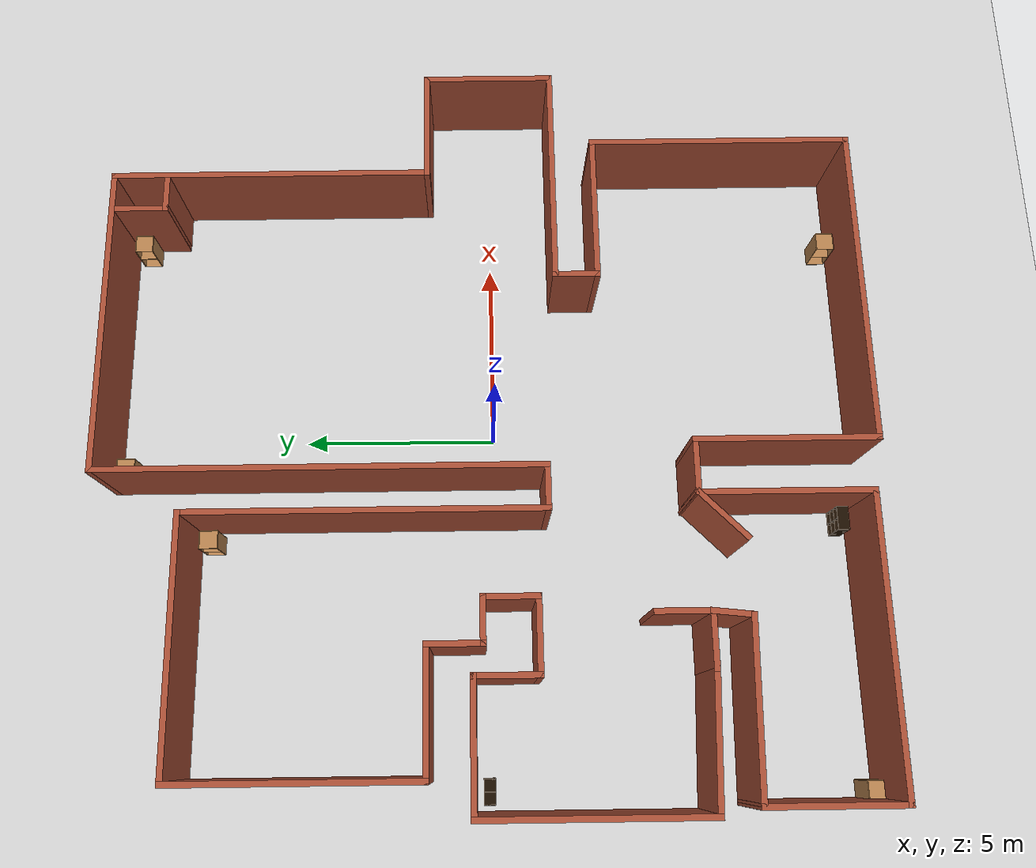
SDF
<sdf version="1.6">
 <world name="default">
  <light name="sun" type="directional">
   <pose>0 0 10 0 -0 0</pose>
   <diffuse>0.8 0.8 0.8 1</diffuse>
   <specular>0.2 0.2 0.2 1</specular>
   <attenuation>
    <range>1000</range>
    <constant>0.9</constant>
    <linear>0.01</linear>
    <quadratic>0.001</quadratic>
   </attenuation>
   <direction>-0.5 0.1 -0.9</direction>
  </light>
  <model name="ground_plane">
   <static>1</static>
   <link name="link">
    <collision name="collision">
     <geometry><plane><normal>0 0 1</normal><size>100 100</size></plane></geometry>
     <surface>
      <contact><collide_bitmask>65535</collide_bitmask></contact>
      <friction><ode><mu>100</mu><mu2>50</mu2></ode></friction>
     </surface>
    </collision>
    <visual name="visual">
     <cast_shadows>0</cast_shadows>
     <geometry><plane><normal>0 0 1</normal><size>100 100</size></plane></geometry>
     <material>
      <script><uri>file://media/materials/scripts/gazebo.material</uri><name>Gazebo/Grey</name></script>
     </material>
    </visual>
   </link>
  </model>
  <gravity>0 0 -9.8</gravity>
  <magnetic_field>6e-06 2.3e-05 -4.2e-05</magnetic_field>
  <atmosphere type="adiabatic"/>
  <physics name="default_physics" default="0" type="ode">
   <max_step_size>0.001</max_step_size>
   <real_time_factor>1</real_time_factor>
   <real_time_update_rate>1000</real_time_update_rate>
  </physics>
  <scene><ambient>0.4 0.4 0.4 1</ambient><background>0.7 0.7 0.7 1</background><shadows>1</shadows></scene>
  <audio><device>default</device></audio>
  <spherical_coordinates>
   <surface_model>EARTH_WGS84</surface_model>
   <latitude_deg>0</latitude_deg>
   <longitude_deg>0</longitude_deg>
   <elevation>0</elevation>
   <heading_deg>0</heading_deg>
  </spherical_coordinates>
  <model name="map_113">
   <pose>0.056753 0.212089 0 0 -0 0</pose>
   <link name="Wall_25">
    <collision name="Wall_25_Collision">
     <geometry><box><size>3.5 0.15 2.5</size></box></geometry>
     <pose>0 0 1.25 0 -0 0</pose>
    </collision>
    <visual name="Wall_25_Visual">
     <pose>0 0 1.25 0 -0 0</pose>
     <geometry><box><size>3.5 0.15 2.5</size></box></geometry>
     <material>
      <script><uri>file://media/materials/scripts/gazebo.material</uri><name>Gazebo/Bricks</name></script>
      <ambient>1 1 1 1</ambient>
     </material>
     <meta><layer>0</layer></meta>
    </visual>
    <pose>-9.41984 -7.9 0 0 -0 -1.5708</pose>
   </link>
   <link name="Wall_31">
    <collision name="Wall_31_Collision">
     <geometry><box><size>7.5 0.15 2.5</size></box></geometry>
     <pose>0 0 1.25 0 -0 0</pose>
    </collision>
    <visual name="Wall_31_Visual">
     <pose>0 0 1.25 0 -0 0</pose>
     <geometry><box><size>7.5 0.15 2.5</size></box></geometry>
     <material>
      <script><uri>file://media/materials/scripts/gazebo.material</uri><name>Gazebo/Bricks</name></script>
      <ambient>1 1 1 1</ambient>
     </material>
     <meta><layer>0</layer></meta>
    </visual>
    <pose>-5.74484 -9.575 0 0 -0 0</pose>
   </link>
   <link name="Wall_32">
    <collision name="Wall_32_Collision">
     <geometry><box><size>4.5 0.15 2.5</size></box></geometry>
     <pose>0 0 1.25 0 -0 0</pose>
    </collision>
    <visual name="Wall_32_Visual">
     <pose>0 0 1.25 0 -0 0</pose>
     <geometry><box><size>4.5 0.15 2.5</size></box></geometry>
     <material>
      <script><uri>file://media/materials/scripts/gazebo.material</uri><name>Gazebo/Bricks</name></script>
      <ambient>1 1 1 1</ambient>
     </material>
     <meta><layer>0</layer></meta>
    </visual>
    <pose>-2.06984 -7.4 0 0 -0 1.5708</pose>
   </link>
   <link name="Wall_33">
    <collision name="Wall_33_Collision">
     <geometry><box><size>1.5 0.15 2.5</size></box></geometry>
     <pose>0 0 1.25 0 -0 0</pose>
    </collision>
    <visual name="Wall_33_Visual">
     <pose>0 0 1.25 0 -0 0</pose>
     <geometry><box><size>1.5 0.15 2.5</size></box></geometry>
     <material>
      <script><uri>file://media/materials/scripts/gazebo.material</uri><name>Gazebo/Bricks</name></script>
      <ambient>1 1 1 1</ambient>
     </material>
     <meta><layer>0</layer></meta>
    </visual>
    <pose>-1.39484 -5.225 0 0 -0 0</pose>
   </link>
   <link name="Wall_34">
    <collision name="Wall_34_Collision">
     <geometry><box><size>4.75 0.15 2.5</size></box></geometry>
     <pose>0 0 1.25 0 -0 0</pose>
    </collision>
    <visual name="Wall_34_Visual">
     <pose>0 0 1.25 0 -0 0</pose>
     <geometry><box><size>4.75 0.15 2.5</size></box></geometry>
     <material>
      <script><uri>file://media/materials/scripts/gazebo.material</uri><name>Gazebo/Bricks</name></script>
      <ambient>1 1 1 1</ambient>
     </material>
     <meta><layer>0</layer></meta>
    </visual>
    <pose>-0.719837 -7.525 0 0 -0 -1.5708</pose>
   </link>
   <link name="Wall_35">
    <collision name="Wall_35_Collision">
     <geometry><box><size>8.5 0.15 2.5</size></box></geometry>
     <pose>0 0 1.25 0 -0 0</pose>
    </collision>
    <visual name="Wall_35_Visual">
     <pose>0 0 1.25 0 -0 0</pose>
     <geometry><box><size>8.5 0.15 2.5</size></box></geometry>
     <material>
      <script><uri>file://media/materials/scripts/gazebo.material</uri><name>Gazebo/Bricks</name></script>
      <ambient>1 1 1 1</ambient>
     </material>
     <meta><layer>0</layer></meta>
    </visual>
    <pose>3.45516 -9.825 0 0 -0 0</pose>
   </link>
   <link name="Wall_36">
    <collision name="Wall_36_Collision">
     <geometry><box><size>7 0.15 2.5</size></box></geometry>
     <pose>0 0 1.25 0 -0 0</pose>
    </collision>
    <visual name="Wall_36_Visual">
     <pose>0 0 1.25 0 -0 0</pose>
     <geometry><box><size>7 0.15 2.5</size></box></geometry>
     <material>
      <script><uri>file://media/materials/scripts/gazebo.material</uri><name>Gazebo/Bricks</name></script>
      <ambient>1 1 1 1</ambient>
     </material>
     <meta><layer>0</layer></meta>
    </visual>
    <pose>7.63016 -6.4 0 0 -0 1.5708</pose>
   </link>
   <link name="Wall_37">
    <collision name="Wall_37_Collision">
     <geometry><box><size>4 0.15 2.5</size></box></geometry>
     <pose>0 0 1.25 0 -0 0</pose>
    </collision>
    <visual name="Wall_37_Visual">
     <pose>0 0 1.25 0 -0 0</pose>
     <geometry><box><size>4 0.15 2.5</size></box></geometry>
     <material>
      <script><uri>file://media/materials/scripts/gazebo.material</uri><name>Gazebo/Bricks</name></script>
      <ambient>1 1 1 1</ambient>
     </material>
     <meta><layer>0</layer></meta>
    </visual>
    <pose>5.70516 -2.975 0 0 -0 3.14159</pose>
   </link>
   <link name="Wall_38">
    <collision name="Wall_38_Collision">
     <geometry><box><size>1.25 0.15 2.5</size></box></geometry>
     <pose>0 0 1.25 0 -0 0</pose>
    </collision>
    <visual name="Wall_38_Visual">
     <pose>0 0 1.25 0 -0 0</pose>
     <geometry><box><size>1.25 0.15 2.5</size></box></geometry>
     <material>
      <script><uri>file://media/materials/scripts/gazebo.material</uri><name>Gazebo/Bricks</name></script>
      <ambient>1 1 1 1</ambient>
     </material>
     <meta><layer>0</layer></meta>
    </visual>
    <pose>3.78016 -2.425 0 0 -0 1.5708</pose>
   </link>
   <link name="Wall_39">
    <collision name="Wall_39_Collision">
     <geometry><box><size>6 0.15 2.5</size></box></geometry>
     <pose>0 0 1.25 0 -0 0</pose>
    </collision>
    <visual name="Wall_39_Visual">
     <pose>0 0 1.25 0 -0 0</pose>
     <geometry><box><size>6 0.15 2.5</size></box></geometry>
     <material>
      <script><uri>file://media/materials/scripts/gazebo.material</uri><name>Gazebo/Bricks</name></script>
      <ambient>1 1 1 1</ambient>
     </material>
     <meta><layer>0</layer></meta>
    </visual>
    <pose>6.70516 -1.875 0 0 -0 0</pose>
   </link>
   <link name="Wall_42">
    <collision name="Wall_42_Collision">
     <geometry><box><size>3.5 0.15 2.5</size></box></geometry>
     <pose>0 0 1.25 0 -0 0</pose>
    </collision>
    <visual name="Wall_42_Visual">
     <pose>0 0 1.25 0 -0 0</pose>
     <geometry><box><size>3.5 0.15 2.5</size></box></geometry>
     <material>
      <script><uri>file://media/materials/scripts/gazebo.material</uri><name>Gazebo/Bricks</name></script>
      <ambient>1 1 1 1</ambient>
     </material>
     <meta><layer>0</layer></meta>
    </visual>
    <pose>9.63016 -0.2 0 0 -0 1.5708</pose>
   </link>
   <link name="Wall_43">
    <collision name="Wall_43_Collision">
     <geometry><box><size>3 0.15 2.5</size></box></geometry>
     <pose>0 0 1.25 0 -0 0</pose>
    </collision>
    <visual name="Wall_43_Visual">
     <pose>0 0 1.25 0 -0 0</pose>
     <geometry><box><size>3 0.15 2.5</size></box></geometry>
     <material>
      <script><uri>file://media/materials/scripts/gazebo.material</uri><name>Gazebo/Bricks</name></script>
      <ambient>1 1 1 1</ambient>
     </material>
     <meta><layer>0</layer></meta>
    </visual>
    <pose>8.20516 1.475 0 0 -0 3.14159</pose>
   </link>
   <link name="Wall_46">
    <collision name="Wall_46_Collision">
     <geometry><box><size>8.5 0.15 2.5</size></box></geometry>
     <pose>0 0 1.25 0 -0 0</pose>
    </collision>
    <visual name="Wall_46_Visual">
     <pose>0 0 1.25 0 -0 0</pose>
     <geometry><box><size>8.5 0.15 2.5</size></box></geometry>
     <material>
      <script><uri>file://media/materials/scripts/gazebo.material</uri><name>Gazebo/Bricks</name></script>
      <ambient>1 1 1 1</ambient>
     </material>
     <meta><layer>0</layer></meta>
    </visual>
    <pose>6.78016 5.65 0 0 -0 1.5708</pose>
   </link>
   <link name="Wall_47">
    <collision name="Wall_47_Collision">
     <geometry><box><size>8.25 0.15 2.5</size></box></geometry>
     <pose>0 0 1.25 0 -0 0</pose>
    </collision>
    <visual name="Wall_47_Visual">
     <pose>0 0 1.25 0 -0 0</pose>
     <geometry><box><size>8.25 0.15 2.5</size></box></geometry>
     <material>
      <script><uri>file://media/materials/scripts/gazebo.material</uri><name>Gazebo/Bricks</name></script>
      <ambient>1 1 1 1</ambient>
     </material>
     <meta><layer>0</layer></meta>
    </visual>
    <pose>2.73016 9.825 0 0 -0 3.14159</pose>
   </link>
   <link name="Wall_48">
    <collision name="Wall_48_Collision">
     <geometry><box><size>11.5 0.15 2.5</size></box></geometry>
     <pose>0 0 1.25 0 -0 0</pose>
    </collision>
    <visual name="Wall_48_Visual">
     <pose>0 0 1.25 0 -0 0</pose>
     <geometry><box><size>11.5 0.15 2.5</size></box></geometry>
     <material>
      <script><uri>file://media/materials/scripts/gazebo.material</uri><name>Gazebo/Bricks</name></script>
      <ambient>1 1 1 1</ambient>
     </material>
     <meta><layer>0</layer></meta>
    </visual>
    <pose>-1.31984 4.15 0 0 -0 -1.5708</pose>
   </link>
   <link name="Wall_49">
    <collision name="Wall_49_Collision">
     <geometry><box><size>1.25 0.15 2.5</size></box></geometry>
     <pose>0 0 1.25 0 -0 0</pose>
    </collision>
    <visual name="Wall_49_Visual">
     <pose>0 0 1.25 0 -0 0</pose>
     <geometry><box><size>1.25 0.15 2.5</size></box></geometry>
     <material>
      <script><uri>file://media/materials/scripts/gazebo.material</uri><name>Gazebo/Bricks</name></script>
      <ambient>1 1 1 1</ambient>
     </material>
     <meta><layer>0</layer></meta>
    </visual>
    <pose>-1.86984 -1.525 0 0 -0 3.14159</pose>
   </link>
   <link name="Wall_52">
    <collision name="Wall_52_Collision">
     <geometry><box><size>9.25 0.15 2.5</size></box></geometry>
     <pose>0 0 1.25 0 -0 0</pose>
    </collision>
    <visual name="Wall_52_Visual">
     <pose>0 0 1.25 0 -0 0</pose>
     <geometry><box><size>9.25 0.15 2.5</size></box></geometry>
     <material>
      <script><uri>file://media/materials/scripts/gazebo.material</uri><name>Gazebo/Bricks</name></script>
      <ambient>1 1 1 1</ambient>
     </material>
     <meta><layer>0</layer></meta>
    </visual>
    <pose>-2.41984 3.025 0 0 -0 1.5708</pose>
   </link>
   <link name="Wall_53">
    <collision name="Wall_53_Collision">
     <geometry><box><size>6.5 0.15 2.5</size></box></geometry>
     <pose>0 0 1.25 0 -0 0</pose>
    </collision>
    <visual name="Wall_53_Visual">
     <pose>0 0 1.25 0 -0 0</pose>
     <geometry><box><size>6.5 0.15 2.5</size></box></geometry>
     <material>
      <script><uri>file://media/materials/scripts/gazebo.material</uri><name>Gazebo/Bricks</name></script>
      <ambient>1 1 1 1</ambient>
     </material>
     <meta><layer>0</layer></meta>
    </visual>
    <pose>-5.59484 7.575 0 0 -0 3.14159</pose>
   </link>
   <link name="Wall_55">
    <collision name="Wall_55_Collision">
     <geometry><box><size>6.25 0.15 2.5</size></box></geometry>
     <pose>0 0 1.25 0 -0 0</pose>
    </collision>
    <visual name="Wall_55_Visual">
     <pose>0 0 1.25 0 -0 0</pose>
     <geometry><box><size>6.25 0.15 2.5</size></box></geometry>
     <material>
      <script><uri>file://media/materials/scripts/gazebo.material</uri><name>Gazebo/Bricks</name></script>
      <ambient>1 1 1 1</ambient>
     </material>
     <meta><layer>0</layer></meta>
    </visual>
    <pose>-8.76984 4.525 0 0 -0 -1.5708</pose>
   </link>
   <link name="Wall_56">
    <collision name="Wall_56_Collision">
     <geometry><box><size>3.25 0.15 2.5</size></box></geometry>
     <pose>0 0 1.25 0 -0 0</pose>
    </collision>
    <visual name="Wall_56_Visual">
     <pose>0 0 1.25 0 -0 0</pose>
     <geometry><box><size>3.25 0.15 2.5</size></box></geometry>
     <material>
      <script><uri>file://media/materials/scripts/gazebo.material</uri><name>Gazebo/Bricks</name></script>
      <ambient>1 1 1 1</ambient>
     </material>
     <meta><layer>0</layer></meta>
    </visual>
    <pose>-7.21984 1.475 0 0 -0 0</pose>
   </link>
   <link name="Wall_59">
    <collision name="Wall_59_Collision">
     <geometry><box><size>1.5 0.15 2.5</size></box></geometry>
     <pose>0 0 1.25 0 -0 0</pose>
    </collision>
    <visual name="Wall_59_Visual">
     <pose>0 0 1.25 0 -0 0</pose>
     <geometry><box><size>1.5 0.15 2.5</size></box></geometry>
     <material>
      <script><uri>file://media/materials/scripts/gazebo.material</uri><name>Gazebo/Bricks</name></script>
      <ambient>1 1 1 1</ambient>
     </material>
     <meta><layer>0</layer></meta>
    </visual>
    <pose>-5.66984 0.8 0 0 -0 -1.5708</pose>
   </link>
   <link name="Wall_60">
    <collision name="Wall_60_Collision">
     <geometry><box><size>1.25 0.15 2.5</size></box></geometry>
     <pose>0 0 1.25 0 -0 0</pose>
    </collision>
    <visual name="Wall_60_Visual">
     <pose>0 0 1.25 0 -0 0</pose>
     <geometry><box><size>1.25 0.15 2.5</size></box></geometry>
     <material>
      <script><uri>file://media/materials/scripts/gazebo.material</uri><name>Gazebo/Bricks</name></script>
      <ambient>1 1 1 1</ambient>
     </material>
     <meta><layer>0</layer></meta>
    </visual>
    <pose>-5.11984 0.125 0 0 -0 0</pose>
   </link>
   <link name="Wall_61">
    <collision name="Wall_61_Collision">
     <geometry><box><size>1.5 0.15 2.5</size></box></geometry>
     <pose>0 0 1.25 0 -0 0</pose>
    </collision>
    <visual name="Wall_61_Visual">
     <pose>0 0 1.25 0 -0 0</pose>
     <geometry><box><size>1.5 0.15 2.5</size></box></geometry>
     <material>
      <script><uri>file://media/materials/scripts/gazebo.material</uri><name>Gazebo/Bricks</name></script>
      <ambient>1 1 1 1</ambient>
     </material>
     <meta><layer>0</layer></meta>
    </visual>
    <pose>-4.56984 -0.55 0 0 -0 -1.5708</pose>
   </link>
   <link name="Wall_64">
    <collision name="Wall_64_Collision">
     <geometry><box><size>2 0.15 2.5</size></box></geometry>
     <pose>0 0 1.25 0 -0 0</pose>
    </collision>
    <visual name="Wall_64_Visual">
     <pose>0 0 1.25 0 -0 0</pose>
     <geometry><box><size>2 0.15 2.5</size></box></geometry>
     <material>
      <script><uri>file://media/materials/scripts/gazebo.material</uri><name>Gazebo/Bricks</name></script>
      <ambient>1 1 1 1</ambient>
     </material>
     <meta><layer>0</layer></meta>
    </visual>
    <pose>-5.49484 -1.225 0 0 -0 3.14159</pose>
   </link>
   <link name="Wall_65">
    <collision name="Wall_65_Collision">
     <geometry><box><size>1.75 0.15 2.5</size></box></geometry>
     <pose>0 0 1.25 0 -0 0</pose>
    </collision>
    <visual name="Wall_65_Visual">
     <pose>0 0 1.25 0 -0 0</pose>
     <geometry><box><size>1.75 0.15 2.5</size></box></geometry>
     <material>
      <script><uri>file://media/materials/scripts/gazebo.material</uri><name>Gazebo/Bricks</name></script>
      <ambient>1 1 1 1</ambient>
     </material>
     <meta><layer>0</layer></meta>
    </visual>
    <pose>-6.41984 -0.425 0 0 -0 1.5708</pose>
   </link>
   <link name="Wall_66">
    <collision name="Wall_66_Collision">
     <geometry><box><size>3.35701 0.15 2.5</size></box></geometry>
     <pose>0 0 1.25 0 -0 0</pose>
    </collision>
    <visual name="Wall_66_Visual">
     <pose>0 0 1.25 0 -0 0</pose>
     <geometry><box><size>3.35701 0.15 2.5</size></box></geometry>
     <material>
      <script><uri>file://media/materials/scripts/gazebo.material</uri><name>Gazebo/Bricks</name></script>
      <ambient>1 1 1 1</ambient>
     </material>
     <meta><layer>0</layer></meta>
    </visual>
    <pose>-8.02334 0.375 0 0 -0 3.14159</pose>
   </link>
   <link name="Wall_69">
    <collision name="Wall_69_Collision">
     <geometry><box><size>5.75 0.15 2.5</size></box></geometry>
     <pose>0 0 1.25 0 -0 0</pose>
    </collision>
    <visual name="Wall_69_Visual">
     <pose>0 0 1.25 0 -0 0</pose>
     <geometry><box><size>5.75 0.15 2.5</size></box></geometry>
     <material>
      <script><uri>file://media/materials/scripts/gazebo.material</uri><name>Gazebo/Bricks</name></script>
      <ambient>1 1 1 1</ambient>
     </material>
     <meta><layer>0</layer></meta>
    </visual>
    <pose>-9.62684 -2.425 0 0 -0 -1.5708</pose>
   </link>
   <link name="Wall_70">
    <collision name="Wall_70_Collision">
     <geometry><box><size>3.46041 0.15 2.5</size></box></geometry>
     <pose>0 0 1.25 0 -0 0</pose>
    </collision>
    <visual name="Wall_70_Visual">
     <pose>0 0 1.25 0 -0 0</pose>
     <geometry><box><size>3.46041 0.15 2.5</size></box></geometry>
     <material>
      <script><uri>file://media/materials/scripts/gazebo.material</uri><name>Gazebo/Bricks</name></script>
      <ambient>1 1 1 1</ambient>
     </material>
     <meta><layer>0</layer></meta>
    </visual>
    <pose>-7.97334 -5.3 0 0 -0 -0.045327</pose>
   </link>
   <link name="Wall_72">
    <collision name="Wall_72_Collision">
     <geometry><box><size>1.5 0.15 2.5</size></box></geometry>
     <pose>0 0 1.25 0 -0 0</pose>
    </collision>
    <visual name="Wall_72_Visual">
     <pose>0 0 1.25 0 -0 0</pose>
     <geometry><box><size>1.5 0.15 2.5</size></box></geometry>
     <material>
      <script><uri>file://media/materials/scripts/gazebo.material</uri><name>Gazebo/Bricks</name></script>
      <ambient>1 1 1 1</ambient>
     </material>
     <meta><layer>0</layer></meta>
    </visual>
    <pose>-5.64484 -5.375 0 0 -0 0</pose>
   </link>
   <link name="Wall_73">
    <collision name="Wall_73_Collision">
     <geometry><box><size>1.5 0.15 2.5</size></box></geometry>
     <pose>0 0 1.25 0 -0 0</pose>
    </collision>
    <visual name="Wall_73_Visual">
     <pose>0 0 1.25 0 -0 0</pose>
     <geometry><box><size>1.5 0.15 2.5</size></box></geometry>
     <material>
      <script><uri>file://media/materials/scripts/gazebo.material</uri><name>Gazebo/Bricks</name></script>
      <ambient>1 1 1 1</ambient>
     </material>
     <meta><layer>0</layer></meta>
    </visual>
    <pose>-4.96984 -4.7 0 0 -0 1.5708</pose>
   </link>
   <link name="Wall_76">
    <collision name="Wall_76_Collision">
     <geometry><box><size>1.75 0.15 2.5</size></box></geometry>
     <pose>0 0 1.25 0 -0 0</pose>
    </collision>
    <visual name="Wall_76_Visual">
     <pose>0 0 1.25 0 -0 0</pose>
     <geometry><box><size>1.75 0.15 2.5</size></box></geometry>
     <material>
      <script><uri>file://media/materials/scripts/gazebo.material</uri><name>Gazebo/Bricks</name></script>
      <ambient>1 1 1 1</ambient>
     </material>
     <meta><layer>0</layer></meta>
    </visual>
    <pose>-2.63552 -5.79068 0 0 -0 -2.35619</pose>
   </link>
   <link name="Wall_79">
    <collision name="Wall_79_Collision">
     <geometry><box><size>1.12708 0.15 2.5</size></box></geometry>
     <pose>0 0 1.25 0 -0 0</pose>
    </collision>
    <visual name="Wall_79_Visual">
     <pose>0 0 1.25 0 -0 0</pose>
     <geometry><box><size>1.12708 0.15 2.5</size></box></geometry>
     <material>
      <script><uri>file://media/materials/scripts/gazebo.material</uri><name>Gazebo/Bricks</name></script>
      <ambient>1 1 1 1</ambient>
     </material>
     <meta><layer>0</layer></meta>
    </visual>
    <pose>-5.02189 -5.86076 0 0 -0 1.46404</pose>
   </link>
   <link name="Wall_81">
    <collision name="Wall_81_Collision">
     <geometry><box><size>4.49759 0.15 2.5</size></box></geometry>
     <pose>0 0 1.25 0 -0 0</pose>
    </collision>
    <visual name="Wall_81_Visual">
     <pose>0 0 1.25 0 -0 0</pose>
     <geometry><box><size>4.49759 0.15 2.5</size></box></geometry>
     <material>
      <script><uri>file://media/materials/scripts/gazebo.material</uri><name>Gazebo/Bricks</name></script>
      <ambient>1 1 1 1</ambient>
     </material>
     <meta><layer>0</layer></meta>
    </visual>
    <pose>-7.24689 -6.28576 0 0 -0 3.11364</pose>
   </link>
   <link name="Wall_83">
    <collision name="Wall_83_Collision">
     <geometry><box><size>1.5 0.15 2.5</size></box></geometry>
     <pose>0 0 1.25 0 -0 0</pose>
    </collision>
    <visual name="Wall_83_Visual">
     <pose>0 0 1.25 0 -0 0</pose>
     <geometry><box><size>1.5 0.15 2.5</size></box></geometry>
     <material>
      <script><uri>file://media/materials/scripts/gazebo.material</uri><name>Gazebo/Bricks</name></script>
      <ambient>1 1 1 1</ambient>
     </material>
     <meta><layer>0</layer></meta>
    </visual>
    <pose>5.80675 9.08274 0 0 -0 -1.5708</pose>
   </link>
   <link name="Wall_84">
    <collision name="Wall_84_Collision">
     <geometry><box><size>1 0.15 2.5</size></box></geometry>
     <pose>0 0 1.25 0 -0 0</pose>
    </collision>
    <visual name="Wall_84_Visual">
     <pose>0 0 1.25 0 -0 0</pose>
     <geometry><box><size>1 0.15 2.5</size></box></geometry>
     <material>
      <script><uri>file://media/materials/scripts/gazebo.material</uri><name>Gazebo/Bricks</name></script>
      <ambient>1 1 1 1</ambient>
     </material>
     <meta><layer>0</layer></meta>
    </visual>
    <pose>6.23175 8.40774 0 0 -0 0</pose>
   </link>
   <static>1</static>
  </model>
  <model name="6_Cube_StorageE">
   <link name="Wall_0">
    <pose>0 0 0.01 0 -0 0</pose>
    <inertial>
     <mass>1.6201</mass>
     <inertia><ixx>0.0119</ixx><iyy>0.0631</iyy><izz>0.0513</izz><ixy>0</ixy><ixz>0</ixz><iyz>0</iyz></inertia>
    </inertial>
    <collision name="Wall_0_Collision"><geometry><box><size>0.616 0.296 0.02</size></box></geometry></collision>
    <visual name="Wall_0_Visual">
     <geometry><box><size>0.616 0.296 0.02</size></box></geometry>
     <material>
      <script><uri>file://media/materials/scripts/gazebo.material</uri><name>Gazebo/Grey</name></script>
      <ambient>0.105882 0.0509804 0 1</ambient>
     </material>
    </visual>
   </link>
   <joint name="0_2" type="fixed">
    <pose>-0.308 0 0 0 -0 0</pose>
    <parent>Wall_2</parent>
    <child>Wall_0</child>
    <axis>
     <xyz>1 0 0</xyz>
     <use_parent_model_frame>0</use_parent_model_frame>
     <limit><lower>-1e+16</lower><upper>1e+16</upper></limit>
    </axis>
   </joint>
   <joint name="0_12" type="fixed">
    <parent>Wall_12</parent>
    <child>Wall_0</child>
    <axis>
     <xyz>0 0 1</xyz>
     <use_parent_model_frame>0</use_parent_model_frame>
     <limit><lower>-1e+16</lower><upper>1e+16</upper></limit>
    </axis>
   </joint>
   <joint name="0_4" type="fixed">
    <pose>0.308 0 0 0 -0 0</pose>
    <parent>Wall_4</parent>
    <child>Wall_0</child>
    <axis>
     <xyz>1 0 0</xyz>
     <use_parent_model_frame>0</use_parent_model_frame>
     <limit><lower>-1e+16</lower><upper>1e+16</upper></limit>
    </axis>
   </joint>
   <link name="Wall_10">
    <pose>0 0 0.61 0 -0 0</pose>
    <inertial>
     <mass>1.6201</mass>
     <inertia><ixx>0.0119</ixx><iyy>0.0631</iyy><izz>0.0513</izz><ixy>0</ixy><ixz>0</ixz><iyz>0</iyz></inertia>
    </inertial>
    <collision name="Wall_10_Collision"><geometry><box><size>0.616 0.296 0.02</size></box></geometry></collision>
    <visual name="Wall_10_Visual">
     <geometry><box><size>0.616 0.296 0.02</size></box></geometry>
     <material>
      <script><uri>file://media/materials/scripts/gazebo.material</uri><name>Gazebo/Grey</name></script>
      <ambient>0.105882 0.0509804 0 1</ambient>
     </material>
    </visual>
   </link>
   <joint name="10_2" type="fixed">
    <pose>-0.308 0 0 0 -0 0</pose>
    <parent>Wall_2</parent>
    <child>Wall_10</child>
    <axis>
     <xyz>1 0 0</xyz>
     <use_parent_model_frame>0</use_parent_model_frame>
     <limit><lower>-1e+16</lower><upper>1e+16</upper></limit>
    </axis>
   </joint>
   <joint name="10_12" type="fixed">
    <parent>Wall_12</parent>
    <child>Wall_10</child>
    <axis>
     <xyz>0 0 1</xyz>
     <use_parent_model_frame>0</use_parent_model_frame>
     <limit><lower>-1e+16</lower><upper>1e+16</upper></limit>
    </axis>
   </joint>
   <joint name="10_4" type="fixed">
    <pose>0.308 0 0 0 -0 0</pose>
    <parent>Wall_4</parent>
    <child>Wall_10</child>
    <axis>
     <xyz>1 0 0</xyz>
     <use_parent_model_frame>0</use_parent_model_frame>
     <limit><lower>-1e+16</lower><upper>1e+16</upper></limit>
    </axis>
   </joint>
   <link name="Wall_12">
    <pose>0 0 0.4575 0 -0 0</pose>
    <inertial>
     <mass>2.4065</mass>
     <inertia><ixx>0.0177</ixx><iyy>0.1855</iyy><izz>0.168</izz><ixy>0</ixy><ixz>0</ixz><iyz>0</iyz></inertia>
    </inertial>
    <collision name="Wall_12_Collision"><geometry><box><size>0.02 0.296 0.915</size></box></geometry></collision>
    <visual name="Wall_12_Visual">
     <geometry><box><size>0.02 0.296 0.915</size></box></geometry>
     <material>
      <script><uri>file://media/materials/scripts/gazebo.material</uri><name>Gazebo/Grey</name></script>
      <ambient>0.105882 0.0509804 0 1</ambient>
     </material>
    </visual>
   </link>
   <link name="Wall_2">
    <pose>-0.298 0 0.4575 0 -0 0</pose>
    <inertial>
     <mass>2.4065</mass>
     <inertia><ixx>0.0177</ixx><iyy>0.1855</iyy><izz>0.168</izz><ixy>0</ixy><ixz>0</ixz><iyz>0</iyz></inertia>
    </inertial>
    <collision name="Wall_2_Collision"><geometry><box><size>0.02 0.296 0.915</size></box></geometry></collision>
    <visual name="Wall_2_Visual">
     <geometry><box><size>0.02 0.296 0.915</size></box></geometry>
     <material>
      <script><uri>file://media/materials/scripts/gazebo.material</uri><name>Gazebo/Grey</name></script>
      <ambient>0.105882 0.0509804 0 1</ambient>
     </material>
    </visual>
   </link>
   <link name="Wall_4">
    <pose>0.298 0 0.4575 0 -0 0</pose>
    <inertial>
     <mass>2.4065</mass>
     <inertia><ixx>0.0177</ixx><iyy>0.1855</iyy><izz>0.168</izz><ixy>0</ixy><ixz>0</ixz><iyz>0</iyz></inertia>
    </inertial>
    <collision name="Wall_4_Collision"><geometry><box><size>0.02 0.296 0.915</size></box></geometry></collision>
    <visual name="Wall_4_Visual">
     <geometry><box><size>0.02 0.296 0.915</size></box></geometry>
     <material>
      <script><uri>file://media/materials/scripts/gazebo.material</uri><name>Gazebo/Grey</name></script>
      <ambient>0.105882 0.0509804 0 1</ambient>
     </material>
    </visual>
   </link>
   <link name="Wall_6">
    <pose>0 0 0.905 0 -0 0</pose>
    <inertial>
     <mass>1.6201</mass>
     <inertia><ixx>0.0119</ixx><iyy>0.0631</iyy><izz>0.0513</izz><ixy>0</ixy><ixz>0</ixz><iyz>0</iyz></inertia>
    </inertial>
    <collision name="Wall_6_Collision"><geometry><box><size>0.616 0.296 0.02</size></box></geometry></collision>
    <visual name="Wall_6_Visual">
     <geometry><box><size>0.616 0.296 0.02</size></box></geometry>
     <material>
      <script><uri>file://media/materials/scripts/gazebo.material</uri><name>Gazebo/Grey</name></script>
      <ambient>0.105882 0.0509804 0 1</ambient>
     </material>
    </visual>
   </link>
   <joint name="6_2" type="fixed">
    <pose>-0.308 0 0 0 -0 0</pose>
    <parent>Wall_2</parent>
    <child>Wall_6</child>
    <axis>
     <xyz>2 0 0</xyz>
     <use_parent_model_frame>0</use_parent_model_frame>
     <limit><lower>-1e+16</lower><upper>1e+16</upper></limit>
    </axis>
   </joint>
   <joint name="6_12" type="fixed">
    <parent>Wall_12</parent>
    <child>Wall_6</child>
    <axis>
     <xyz>0 0 1</xyz>
     <use_parent_model_frame>0</use_parent_model_frame>
     <limit><lower>-1e+16</lower><upper>1e+16</upper></limit>
    </axis>
   </joint>
   <joint name="6_4" type="fixed">
    <pose>0.308 0 0 0 -0 0</pose>
    <parent>Wall_4</parent>
    <child>Wall_6</child>
    <axis>
     <xyz>1 0 0</xyz>
     <use_parent_model_frame>0</use_parent_model_frame>
     <limit><lower>-1e+16</lower><upper>1e+16</upper></limit>
    </axis>
   </joint>
   <link name="Wall_8">
    <pose>0 0 0.305 0 -0 0</pose>
    <inertial>
     <mass>1.6201</mass>
     <inertia><ixx>0.0119</ixx><iyy>0.0631</iyy><izz>0.0513</izz><ixy>0</ixy><ixz>0</ixz><iyz>0</iyz></inertia>
    </inertial>
    <collision name="Wall_8_Collision"><geometry><box><size>0.616 0.296 0.02</size></box></geometry></collision>
    <visual name="Wall_8_Visual">
     <geometry><box><size>0.616 0.296 0.02</size></box></geometry>
     <material>
      <script><uri>file://media/materials/scripts/gazebo.material</uri><name>Gazebo/Grey</name></script>
      <ambient>0.105882 0.0509804 0 1</ambient>
     </material>
    </visual>
   </link>
   <joint name="8_2" type="fixed">
    <pose>-0.308 0 0 0 -0 0</pose>
    <parent>Wall_2</parent>
    <child>Wall_8</child>
    <axis>
     <xyz>1 0 0</xyz>
     <use_parent_model_frame>0</use_parent_model_frame>
     <limit><lower>-1e+16</lower><upper>1e+16</upper></limit>
    </axis>
   </joint>
   <joint name="8_12" type="fixed">
    <parent>Wall_12</parent>
    <child>Wall_8</child>
    <axis>
     <xyz>0 0 1</xyz>
     <use_parent_model_frame>0</use_parent_model_frame>
     <limit><lower>-1e+16</lower><upper>1e+16</upper></limit>
    </axis>
   </joint>
   <joint name="8_4" type="fixed">
    <pose>0.308 0 0 0 -0 0</pose>
    <parent>Wall_4</parent>
    <child>Wall_8</child>
    <axis>
     <xyz>1 0 0</xyz>
     <use_parent_model_frame>0</use_parent_model_frame>
     <limit><lower>-1e+16</lower><upper>1e+16</upper></limit>
    </axis>
   </joint>
   <static>1</static>
   <pose>-2.39866 -9.01086 0 0 -0 0</pose>
  </model>
  <model name="cabinet">
   <static>1</static>
   <link name="cabinet_bottom_plate">
    <inertial>
     <pose>0 0 -1 0 -0 0</pose>
     <inertia><ixx>2.05</ixx><ixy>0</ixy><ixz>0</ixz><iyy>2.05</iyy><iyz>0</iyz><izz>2.05</izz></inertia>
     <mass>25</mass>
    </inertial>
    <collision name="cabinet_bottom_plate_geom">
     <pose>0 0 0.01 0 -0 0</pose>
     <geometry><box><size>0.45 0.45 0.02</size></box></geometry>
    </collision>
    <visual name="cabinet_bottom_plate_geom_visual">
     <pose>0 0 0.01 0 -0 0</pose>
     <geometry><box><size>0.45 0.45 0.02</size></box></geometry>
     <material>
      <script><uri>file://media/materials/scripts/gazebo.material</uri><name>Gazebo/Wood</name></script>
     </material>
    </visual>
    <collision name="cabinet_bottom_plate_geom_cabinet_back_plate">
     <pose>0.235 0 0.51 0 -0 0</pose>
     <geometry><box><size>0.02 0.45 1.02</size></box></geometry>
    </collision>
    <visual name="cabinet_bottom_plate_geom_cabinet_back_plate_visual">
     <pose>0.235 0 0.51 0 -0 0</pose>
     <geometry><box><size>0.02 0.45 1.02</size></box></geometry>
     <material>
      <script><uri>file://media/materials/scripts/gazebo.material</uri><name>Gazebo/Wood</name></script>
     </material>
    </visual>
    <collision name="cabinet_bottom_plate_geom_cabinet_left_plate">
     <pose>0 0.235 0.51 0 -0 0</pose>
     <geometry><box><size>0.45 0.02 1.02</size></box></geometry>
    </collision>
    <visual name="cabinet_bottom_plate_geom_cabinet_left_plate_visual">
     <pose>0 0.235 0.51 0 -0 0</pose>
     <geometry><box><size>0.45 0.02 1.02</size></box></geometry>
     <material>
      <script><uri>file://media/materials/scripts/gazebo.material</uri><name>Gazebo/Wood</name></script>
     </material>
    </visual>
    <collision name="cabinet_bottom_plate_geom_cabinet_middle_plate">
     <pose>0 0 0.51 0 -0 0</pose>
     <geometry><box><size>0.45 0.45 0.02</size></box></geometry>
    </collision>
    <visual name="cabinet_bottom_plate_geom_cabinet_middle_plate_visual">
     <pose>0 0 0.51 0 -0 0</pose>
     <geometry><box><size>0.45 0.45 0.02</size></box></geometry>
     <material>
      <script><uri>file://media/materials/scripts/gazebo.material</uri><name>Gazebo/Wood</name></script>
     </material>
    </visual>
    <collision name="cabinet_bottom_plate_geom_cabinet_right_plate">
     <pose>0 -0.235 0.51 0 -0 0</pose>
     <geometry><box><size>0.45 0.02 1.02</size></box></geometry>
    </collision>
    <visual name="cabinet_bottom_plate_geom_cabinet_right_plate_visual">
     <pose>0 -0.235 0.51 0 -0 0</pose>
     <geometry><box><size>0.45 0.02 1.02</size></box></geometry>
     <material>
      <script><uri>file://media/materials/scripts/gazebo.material</uri><name>Gazebo/Wood</name></script>
     </material>
    </visual>
    <collision name="cabinet_bottom_plate_geom_cabinet_top_plate">
     <pose>0 0 1.01 0 -0 0</pose>
     <geometry><box><size>0.45 0.45 0.02</size></box></geometry>
    </collision>
    <visual name="cabinet_bottom_plate_geom_cabinet_top_plate_visual">
     <pose>0 0 1.01 0 -0 0</pose>
     <geometry><box><size>0.45 0.45 0.02</size></box></geometry>
     <material>
      <script><uri>file://media/materials/scripts/gazebo.material</uri><name>Gazebo/Wood</name></script>
     </material>
    </visual>
   </link>
   <pose>-9.09622 -9.13035 0 0 -0 0</pose>
  </model>
  <model name="6_Cube_StorageE_0">
   <link name="Wall_0">
    <pose>0 0 0.01 0 -0 0</pose>
    <inertial>
     <mass>1.6201</mass>
     <inertia><ixx>0.0119</ixx><iyy>0.0631</iyy><izz>0.0513</izz><ixy>0</ixy><ixz>0</ixz><iyz>0</iyz></inertia>
    </inertial>
    <collision name="Wall_0_Collision"><geometry><box><size>0.616 0.296 0.02</size></box></geometry></collision>
    <visual name="Wall_0_Visual">
     <geometry><box><size>0.616 0.296 0.02</size></box></geometry>
     <material>
      <script><uri>file://media/materials/scripts/gazebo.material</uri><name>Gazebo/Grey</name></script>
      <ambient>0.105882 0.0509804 0 1</ambient>
     </material>
    </visual>
   </link>
   <joint name="0_2" type="fixed">
    <pose>-0.308 0 0 0 -0 0</pose>
    <parent>Wall_2</parent>
    <child>Wall_0</child>
    <axis>
     <xyz>1 0 0</xyz>
     <use_parent_model_frame>0</use_parent_model_frame>
     <limit><lower>-1e+16</lower><upper>1e+16</upper></limit>
    </axis>
   </joint>
   <joint name="0_12" type="fixed">
    <parent>Wall_12</parent>
    <child>Wall_0</child>
    <axis>
     <xyz>0 0 1</xyz>
     <use_parent_model_frame>0</use_parent_model_frame>
     <limit><lower>-1e+16</lower><upper>1e+16</upper></limit>
    </axis>
   </joint>
   <joint name="0_4" type="fixed">
    <pose>0.308 0 0 0 -0 0</pose>
    <parent>Wall_4</parent>
    <child>Wall_0</child>
    <axis>
     <xyz>1 0 0</xyz>
     <use_parent_model_frame>0</use_parent_model_frame>
     <limit><lower>-1e+16</lower><upper>1e+16</upper></limit>
    </axis>
   </joint>
   <link name="Wall_10">
    <pose>0 0 0.61 0 -0 0</pose>
    <inertial>
     <mass>1.6201</mass>
     <inertia><ixx>0.0119</ixx><iyy>0.0631</iyy><izz>0.0513</izz><ixy>0</ixy><ixz>0</ixz><iyz>0</iyz></inertia>
    </inertial>
    <collision name="Wall_10_Collision"><geometry><box><size>0.616 0.296 0.02</size></box></geometry></collision>
    <visual name="Wall_10_Visual">
     <geometry><box><size>0.616 0.296 0.02</size></box></geometry>
     <material>
      <script><uri>file://media/materials/scripts/gazebo.material</uri><name>Gazebo/Grey</name></script>
      <ambient>0.105882 0.0509804 0 1</ambient>
     </material>
    </visual>
   </link>
   <joint name="10_2" type="fixed">
    <pose>-0.308 0 0 0 -0 0</pose>
    <parent>Wall_2</parent>
    <child>Wall_10</child>
    <axis>
     <xyz>1 0 0</xyz>
     <use_parent_model_frame>0</use_parent_model_frame>
     <limit><lower>-1e+16</lower><upper>1e+16</upper></limit>
    </axis>
   </joint>
   <joint name="10_12" type="fixed">
    <parent>Wall_12</parent>
    <child>Wall_10</child>
    <axis>
     <xyz>0 0 1</xyz>
     <use_parent_model_frame>0</use_parent_model_frame>
     <limit><lower>-1e+16</lower><upper>1e+16</upper></limit>
    </axis>
   </joint>
   <joint name="10_4" type="fixed">
    <pose>0.308 0 0 0 -0 0</pose>
    <parent>Wall_4</parent>
    <child>Wall_10</child>
    <axis>
     <xyz>1 0 0</xyz>
     <use_parent_model_frame>0</use_parent_model_frame>
     <limit><lower>-1e+16</lower><upper>1e+16</upper></limit>
    </axis>
   </joint>
   <link name="Wall_12">
    <pose>0 0 0.4575 0 -0 0</pose>
    <inertial>
     <mass>2.4065</mass>
     <inertia><ixx>0.0177</ixx><iyy>0.1855</iyy><izz>0.168</izz><ixy>0</ixy><ixz>0</ixz><iyz>0</iyz></inertia>
    </inertial>
    <collision name="Wall_12_Collision"><geometry><box><size>0.02 0.296 0.915</size></box></geometry></collision>
    <visual name="Wall_12_Visual">
     <geometry><box><size>0.02 0.296 0.915</size></box></geometry>
     <material>
      <script><uri>file://media/materials/scripts/gazebo.material</uri><name>Gazebo/Grey</name></script>
      <ambient>0.105882 0.0509804 0 1</ambient>
     </material>
    </visual>
   </link>
   <link name="Wall_2">
    <pose>-0.298 0 0.4575 0 -0 0</pose>
    <inertial>
     <mass>2.4065</mass>
     <inertia><ixx>0.0177</ixx><iyy>0.1855</iyy><izz>0.168</izz><ixy>0</ixy><ixz>0</ixz><iyz>0</iyz></inertia>
    </inertial>
    <collision name="Wall_2_Collision"><geometry><box><size>0.02 0.296 0.915</size></box></geometry></collision>
    <visual name="Wall_2_Visual">
     <geometry><box><size>0.02 0.296 0.915</size></box></geometry>
     <material>
      <script><uri>file://media/materials/scripts/gazebo.material</uri><name>Gazebo/Grey</name></script>
      <ambient>0.105882 0.0509804 0 1</ambient>
     </material>
    </visual>
   </link>
   <link name="Wall_4">
    <pose>0.298 0 0.4575 0 -0 0</pose>
    <inertial>
     <mass>2.4065</mass>
     <inertia><ixx>0.0177</ixx><iyy>0.1855</iyy><izz>0.168</izz><ixy>0</ixy><ixz>0</ixz><iyz>0</iyz></inertia>
    </inertial>
    <collision name="Wall_4_Collision"><geometry><box><size>0.02 0.296 0.915</size></box></geometry></collision>
    <visual name="Wall_4_Visual">
     <geometry><box><size>0.02 0.296 0.915</size></box></geometry>
     <material>
      <script><uri>file://media/materials/scripts/gazebo.material</uri><name>Gazebo/Grey</name></script>
      <ambient>0.105882 0.0509804 0 1</ambient>
     </material>
    </visual>
   </link>
   <link name="Wall_6">
    <pose>0 0 0.905 0 -0 0</pose>
    <inertial>
     <mass>1.6201</mass>
     <inertia><ixx>0.0119</ixx><iyy>0.0631</iyy><izz>0.0513</izz><ixy>0</ixy><ixz>0</ixz><iyz>0</iyz></inertia>
    </inertial>
    <collision name="Wall_6_Collision"><geometry><box><size>0.616 0.296 0.02</size></box></geometry></collision>
    <visual name="Wall_6_Visual">
     <geometry><box><size>0.616 0.296 0.02</size></box></geometry>
     <material>
      <script><uri>file://media/materials/scripts/gazebo.material</uri><name>Gazebo/Grey</name></script>
      <ambient>0.105882 0.0509804 0 1</ambient>
     </material>
    </visual>
   </link>
   <joint name="6_2" type="fixed">
    <pose>-0.308 0 0 0 -0 0</pose>
    <parent>Wall_2</parent>
    <child>Wall_6</child>
    <axis>
     <xyz>2 0 0</xyz>
     <use_parent_model_frame>0</use_parent_model_frame>
     <limit><lower>-1e+16</lower><upper>1e+16</upper></limit>
    </axis>
   </joint>
   <joint name="6_12" type="fixed">
    <parent>Wall_12</parent>
    <child>Wall_6</child>
    <axis>
     <xyz>0 0 1</xyz>
     <use_parent_model_frame>0</use_parent_model_frame>
     <limit><lower>-1e+16</lower><upper>1e+16</upper></limit>
    </axis>
   </joint>
   <joint name="6_4" type="fixed">
    <pose>0.308 0 0 0 -0 0</pose>
    <parent>Wall_4</parent>
    <child>Wall_6</child>
    <axis>
     <xyz>1 0 0</xyz>
     <use_parent_model_frame>0</use_parent_model_frame>
     <limit><lower>-1e+16</lower><upper>1e+16</upper></limit>
    </axis>
   </joint>
   <link name="Wall_8">
    <pose>0 0 0.305 0 -0 0</pose>
    <inertial>
     <mass>1.6201</mass>
     <inertia><ixx>0.0119</ixx><iyy>0.0631</iyy><izz>0.0513</izz><ixy>0</ixy><ixz>0</ixz><iyz>0</iyz></inertia>
    </inertial>
    <collision name="Wall_8_Collision"><geometry><box><size>0.616 0.296 0.02</size></box></geometry></collision>
    <visual name="Wall_8_Visual">
     <geometry><box><size>0.616 0.296 0.02</size></box></geometry>
     <material>
      <script><uri>file://media/materials/scripts/gazebo.material</uri><name>Gazebo/Grey</name></script>
      <ambient>0.105882 0.0509804 0 1</ambient>
     </material>
    </visual>
   </link>
   <joint name="8_2" type="fixed">
    <pose>-0.308 0 0 0 -0 0</pose>
    <parent>Wall_2</parent>
    <child>Wall_8</child>
    <axis>
     <xyz>1 0 0</xyz>
     <use_parent_model_frame>0</use_parent_model_frame>
     <limit><lower>-1e+16</lower><upper>1e+16</upper></limit>
    </axis>
   </joint>
   <joint name="8_12" type="fixed">
    <parent>Wall_12</parent>
    <child>Wall_8</child>
    <axis>
     <xyz>0 0 1</xyz>
     <use_parent_model_frame>0</use_parent_model_frame>
     <limit><lower>-1e+16</lower><upper>1e+16</upper></limit>
    </axis>
   </joint>
   <joint name="8_4" type="fixed">
    <pose>0.308 0 0 0 -0 0</pose>
    <parent>Wall_4</parent>
    <child>Wall_8</child>
    <axis>
     <xyz>1 0 0</xyz>
     <use_parent_model_frame>0</use_parent_model_frame>
     <limit><lower>-1e+16</lower><upper>1e+16</upper></limit>
    </axis>
   </joint>
   <static>1</static>
   <pose>-9.01634 0.211907 0 0 -0 0</pose>
  </model>
  <model name="cabinet_0">
   <static>1</static>
   <link name="cabinet_bottom_plate">
    <inertial>
     <pose>0 0 -1 0 -0 0</pose>
     <inertia><ixx>2.05</ixx><ixy>0</ixy><ixz>0</ixz><iyy>2.05</iyy><iyz>0</iyz><izz>2.05</izz></inertia>
     <mass>25</mass>
    </inertial>
    <collision name="cabinet_bottom_plate_geom">
     <pose>0 0 0.01 0 -0 0</pose>
     <geometry><box><size>0.45 0.45 0.02</size></box></geometry>
    </collision>
    <visual name="cabinet_bottom_plate_geom_visual">
     <pose>0 0 0.01 0 -0 0</pose>
     <geometry><box><size>0.45 0.45 0.02</size></box></geometry>
     <material>
      <script><uri>file://media/materials/scripts/gazebo.material</uri><name>Gazebo/Wood</name></script>
     </material>
    </visual>
    <collision name="cabinet_bottom_plate_geom_cabinet_back_plate">
     <pose>0.235 0 0.51 0 -0 0</pose>
     <geometry><box><size>0.02 0.45 1.02</size></box></geometry>
    </collision>
    <visual name="cabinet_bottom_plate_geom_cabinet_back_plate_visual">
     <pose>0.235 0 0.51 0 -0 0</pose>
     <geometry><box><size>0.02 0.45 1.02</size></box></geometry>
     <material>
      <script><uri>file://media/materials/scripts/gazebo.material</uri><name>Gazebo/Wood</name></script>
     </material>
    </visual>
    <collision name="cabinet_bottom_plate_geom_cabinet_left_plate">
     <pose>0 0.235 0.51 0 -0 0</pose>
     <geometry><box><size>0.45 0.02 1.02</size></box></geometry>
    </collision>
    <visual name="cabinet_bottom_plate_geom_cabinet_left_plate_visual">
     <pose>0 0.235 0.51 0 -0 0</pose>
     <geometry><box><size>0.45 0.02 1.02</size></box></geometry>
     <material>
      <script><uri>file://media/materials/scripts/gazebo.material</uri><name>Gazebo/Wood</name></script>
     </material>
    </visual>
    <collision name="cabinet_bottom_plate_geom_cabinet_middle_plate">
     <pose>0 0 0.51 0 -0 0</pose>
     <geometry><box><size>0.45 0.45 0.02</size></box></geometry>
    </collision>
    <visual name="cabinet_bottom_plate_geom_cabinet_middle_plate_visual">
     <pose>0 0 0.51 0 -0 0</pose>
     <geometry><box><size>0.45 0.45 0.02</size></box></geometry>
     <material>
      <script><uri>file://media/materials/scripts/gazebo.material</uri><name>Gazebo/Wood</name></script>
     </material>
    </visual>
    <collision name="cabinet_bottom_plate_geom_cabinet_right_plate">
     <pose>0 -0.235 0.51 0 -0 0</pose>
     <geometry><box><size>0.45 0.02 1.02</size></box></geometry>
    </collision>
    <visual name="cabinet_bottom_plate_geom_cabinet_right_plate_visual">
     <pose>0 -0.235 0.51 0 -0 0</pose>
     <geometry><box><size>0.45 0.02 1.02</size></box></geometry>
     <material>
      <script><uri>file://media/materials/scripts/gazebo.material</uri><name>Gazebo/Wood</name></script>
     </material>
    </visual>
    <collision name="cabinet_bottom_plate_geom_cabinet_top_plate">
     <pose>0 0 1.01 0 -0 0</pose>
     <geometry><box><size>0.45 0.45 0.02</size></box></geometry>
    </collision>
    <visual name="cabinet_bottom_plate_geom_cabinet_top_plate_visual">
     <pose>0 0 1.01 0 -0 0</pose>
     <geometry><box><size>0.45 0.45 0.02</size></box></geometry>
     <material>
      <script><uri>file://media/materials/scripts/gazebo.material</uri><name>Gazebo/Wood</name></script>
     </material>
    </visual>
   </link>
   <pose>5.36863 -9.25515 0 0 -0 0</pose>
  </model>
  <model name="cabinet_1">
   <static>1</static>
   <link name="cabinet_bottom_plate">
    <inertial>
     <pose>0 0 -1 0 -0 0</pose>
     <inertia><ixx>2.05</ixx><ixy>0</ixy><ixz>0</ixz><iyy>2.05</iyy><iyz>0</iyz><izz>2.05</izz></inertia>
     <mass>25</mass>
    </inertial>
    <collision name="cabinet_bottom_plate_geom">
     <pose>0 0 0.01 0 -0 0</pose>
     <geometry><box><size>0.45 0.45 0.02</size></box></geometry>
    </collision>
    <visual name="cabinet_bottom_plate_geom_visual">
     <pose>0 0 0.01 0 -0 0</pose>
     <geometry><box><size>0.45 0.45 0.02</size></box></geometry>
     <material>
      <script><uri>file://media/materials/scripts/gazebo.material</uri><name>Gazebo/Wood</name></script>
     </material>
    </visual>
    <collision name="cabinet_bottom_plate_geom_cabinet_back_plate">
     <pose>0.235 0 0.51 0 -0 0</pose>
     <geometry><box><size>0.02 0.45 1.02</size></box></geometry>
    </collision>
    <visual name="cabinet_bottom_plate_geom_cabinet_back_plate_visual">
     <pose>0.235 0 0.51 0 -0 0</pose>
     <geometry><box><size>0.02 0.45 1.02</size></box></geometry>
     <material>
      <script><uri>file://media/materials/scripts/gazebo.material</uri><name>Gazebo/Wood</name></script>
     </material>
    </visual>
    <collision name="cabinet_bottom_plate_geom_cabinet_left_plate">
     <pose>0 0.235 0.51 0 -0 0</pose>
     <geometry><box><size>0.45 0.02 1.02</size></box></geometry>
    </collision>
    <visual name="cabinet_bottom_plate_geom_cabinet_left_plate_visual">
     <pose>0 0.235 0.51 0 -0 0</pose>
     <geometry><box><size>0.45 0.02 1.02</size></box></geometry>
     <material>
      <script><uri>file://media/materials/scripts/gazebo.material</uri><name>Gazebo/Wood</name></script>
     </material>
    </visual>
    <collision name="cabinet_bottom_plate_geom_cabinet_middle_plate">
     <pose>0 0 0.51 0 -0 0</pose>
     <geometry><box><size>0.45 0.45 0.02</size></box></geometry>
    </collision>
    <visual name="cabinet_bottom_plate_geom_cabinet_middle_plate_visual">
     <pose>0 0 0.51 0 -0 0</pose>
     <geometry><box><size>0.45 0.45 0.02</size></box></geometry>
     <material>
      <script><uri>file://media/materials/scripts/gazebo.material</uri><name>Gazebo/Wood</name></script>
     </material>
    </visual>
    <collision name="cabinet_bottom_plate_geom_cabinet_right_plate">
     <pose>0 -0.235 0.51 0 -0 0</pose>
     <geometry><box><size>0.45 0.02 1.02</size></box></geometry>
    </collision>
    <visual name="cabinet_bottom_plate_geom_cabinet_right_plate_visual">
     <pose>0 -0.235 0.51 0 -0 0</pose>
     <geometry><box><size>0.45 0.02 1.02</size></box></geometry>
     <material>
      <script><uri>file://media/materials/scripts/gazebo.material</uri><name>Gazebo/Wood</name></script>
     </material>
    </visual>
    <collision name="cabinet_bottom_plate_geom_cabinet_top_plate">
     <pose>0 0 1.01 0 -0 0</pose>
     <geometry><box><size>0.45 0.45 0.02</size></box></geometry>
    </collision>
    <visual name="cabinet_bottom_plate_geom_cabinet_top_plate_visual">
     <pose>0 0 1.01 0 -0 0</pose>
     <geometry><box><size>0.45 0.45 0.02</size></box></geometry>
     <material>
      <script><uri>file://media/materials/scripts/gazebo.material</uri><name>Gazebo/Wood</name></script>
     </material>
    </visual>
   </link>
   <pose>5.54041 9.57744 0 0 -0 0</pose>
  </model>
  <model name="cabinet_2">
   <static>1</static>
   <link name="cabinet_bottom_plate">
    <inertial>
     <pose>0 0 -1 0 -0 0</pose>
     <inertia><ixx>2.05</ixx><ixy>0</ixy><ixz>0</ixz><iyy>2.05</iyy><iyz>0</iyz><izz>2.05</izz></inertia>
     <mass>25</mass>
    </inertial>
    <collision name="cabinet_bottom_plate_geom">
     <pose>0 0 0.01 0 -0 0</pose>
     <geometry><box><size>0.45 0.45 0.02</size></box></geometry>
    </collision>
    <visual name="cabinet_bottom_plate_geom_visual">
     <pose>0 0 0.01 0 -0 0</pose>
     <geometry><box><size>0.45 0.45 0.02</size></box></geometry>
     <material>
      <script><uri>file://media/materials/scripts/gazebo.material</uri><name>Gazebo/Wood</name></script>
     </material>
    </visual>
    <collision name="cabinet_bottom_plate_geom_cabinet_back_plate">
     <pose>0.235 0 0.51 0 -0 0</pose>
     <geometry><box><size>0.02 0.45 1.02</size></box></geometry>
    </collision>
    <visual name="cabinet_bottom_plate_geom_cabinet_back_plate_visual">
     <pose>0.235 0 0.51 0 -0 0</pose>
     <geometry><box><size>0.02 0.45 1.02</size></box></geometry>
     <material>
      <script><uri>file://media/materials/scripts/gazebo.material</uri><name>Gazebo/Wood</name></script>
     </material>
    </visual>
    <collision name="cabinet_bottom_plate_geom_cabinet_left_plate">
     <pose>0 0.235 0.51 0 -0 0</pose>
     <geometry><box><size>0.45 0.02 1.02</size></box></geometry>
    </collision>
    <visual name="cabinet_bottom_plate_geom_cabinet_left_plate_visual">
     <pose>0 0.235 0.51 0 -0 0</pose>
     <geometry><box><size>0.45 0.02 1.02</size></box></geometry>
     <material>
      <script><uri>file://media/materials/scripts/gazebo.material</uri><name>Gazebo/Wood</name></script>
     </material>
    </visual>
    <collision name="cabinet_bottom_plate_geom_cabinet_middle_plate">
     <pose>0 0 0.51 0 -0 0</pose>
     <geometry><box><size>0.45 0.45 0.02</size></box></geometry>
    </collision>
    <visual name="cabinet_bottom_plate_geom_cabinet_middle_plate_visual">
     <pose>0 0 0.51 0 -0 0</pose>
     <geometry><box><size>0.45 0.45 0.02</size></box></geometry>
     <material>
      <script><uri>file://media/materials/scripts/gazebo.material</uri><name>Gazebo/Wood</name></script>
     </material>
    </visual>
    <collision name="cabinet_bottom_plate_geom_cabinet_right_plate">
     <pose>0 -0.235 0.51 0 -0 0</pose>
     <geometry><box><size>0.45 0.02 1.02</size></box></geometry>
    </collision>
    <visual name="cabinet_bottom_plate_geom_cabinet_right_plate_visual">
     <pose>0 -0.235 0.51 0 -0 0</pose>
     <geometry><box><size>0.45 0.02 1.02</size></box></geometry>
     <material>
      <script><uri>file://media/materials/scripts/gazebo.material</uri><name>Gazebo/Wood</name></script>
     </material>
    </visual>
    <collision name="cabinet_bottom_plate_geom_cabinet_top_plate">
     <pose>0 0 1.01 0 -0 0</pose>
     <geometry><box><size>0.45 0.45 0.02</size></box></geometry>
    </collision>
    <visual name="cabinet_bottom_plate_geom_cabinet_top_plate_visual">
     <pose>0 0 1.01 0 -0 0</pose>
     <geometry><box><size>0.45 0.45 0.02</size></box></geometry>
     <material>
      <script><uri>file://media/materials/scripts/gazebo.material</uri><name>Gazebo/Wood</name></script>
     </material>
    </visual>
   </link>
   <pose>-0.850582 9.61205 0 0 -0 0</pose>
  </model>
  <model name="cabinet_3">
   <static>1</static>
   <link name="cabinet_bottom_plate">
    <inertial>
     <pose>0 0 -1 0 -0 0</pose>
     <inertia><ixx>2.05</ixx><ixy>0</ixy><ixz>0</ixz><iyy>2.05</iyy><iyz>0</iyz><izz>2.05</izz></inertia>
     <mass>25</mass>
    </inertial>
    <collision name="cabinet_bottom_plate_geom">
     <pose>0 0 0.01 0 -0 0</pose>
     <geometry><box><size>0.45 0.45 0.02</size></box></geometry>
    </collision>
    <visual name="cabinet_bottom_plate_geom_visual">
     <pose>0 0 0.01 0 -0 0</pose>
     <geometry><box><size>0.45 0.45 0.02</size></box></geometry>
     <material>
      <script><uri>file://media/materials/scripts/gazebo.material</uri><name>Gazebo/Wood</name></script>
     </material>
    </visual>
    <collision name="cabinet_bottom_plate_geom_cabinet_back_plate">
     <pose>0.235 0 0.51 0 -0 0</pose>
     <geometry><box><size>0.02 0.45 1.02</size></box></geometry>
    </collision>
    <visual name="cabinet_bottom_plate_geom_cabinet_back_plate_visual">
     <pose>0.235 0 0.51 0 -0 0</pose>
     <geometry><box><size>0.02 0.45 1.02</size></box></geometry>
     <material>
      <script><uri>file://media/materials/scripts/gazebo.material</uri><name>Gazebo/Wood</name></script>
     </material>
    </visual>
    <collision name="cabinet_bottom_plate_geom_cabinet_left_plate">
     <pose>0 0.235 0.51 0 -0 0</pose>
     <geometry><box><size>0.45 0.02 1.02</size></box></geometry>
    </collision>
    <visual name="cabinet_bottom_plate_geom_cabinet_left_plate_visual">
     <pose>0 0.235 0.51 0 -0 0</pose>
     <geometry><box><size>0.45 0.02 1.02</size></box></geometry>
     <material>
      <script><uri>file://media/materials/scripts/gazebo.material</uri><name>Gazebo/Wood</name></script>
     </material>
    </visual>
    <collision name="cabinet_bottom_plate_geom_cabinet_middle_plate">
     <pose>0 0 0.51 0 -0 0</pose>
     <geometry><box><size>0.45 0.45 0.02</size></box></geometry>
    </collision>
    <visual name="cabinet_bottom_plate_geom_cabinet_middle_plate_visual">
     <pose>0 0 0.51 0 -0 0</pose>
     <geometry><box><size>0.45 0.45 0.02</size></box></geometry>
     <material>
      <script><uri>file://media/materials/scripts/gazebo.material</uri><name>Gazebo/Wood</name></script>
     </material>
    </visual>
    <collision name="cabinet_bottom_plate_geom_cabinet_right_plate">
     <pose>0 -0.235 0.51 0 -0 0</pose>
     <geometry><box><size>0.45 0.02 1.02</size></box></geometry>
    </collision>
    <visual name="cabinet_bottom_plate_geom_cabinet_right_plate_visual">
     <pose>0 -0.235 0.51 0 -0 0</pose>
     <geometry><box><size>0.45 0.02 1.02</size></box></geometry>
     <material>
      <script><uri>file://media/materials/scripts/gazebo.material</uri><name>Gazebo/Wood</name></script>
     </material>
    </visual>
    <collision name="cabinet_bottom_plate_geom_cabinet_top_plate">
     <pose>0 0 1.01 0 -0 0</pose>
     <geometry><box><size>0.45 0.45 0.02</size></box></geometry>
    </collision>
    <visual name="cabinet_bottom_plate_geom_cabinet_top_plate_visual">
     <pose>0 0 1.01 0 -0 0</pose>
     <geometry><box><size>0.45 0.45 0.02</size></box></geometry>
     <material>
      <script><uri>file://media/materials/scripts/gazebo.material</uri><name>Gazebo/Wood</name></script>
     </material>
    </visual>
   </link>
   <pose>-2.78074 7.34121 0 0 -0 0</pose>
  </model>
 </world>
</sdf>
